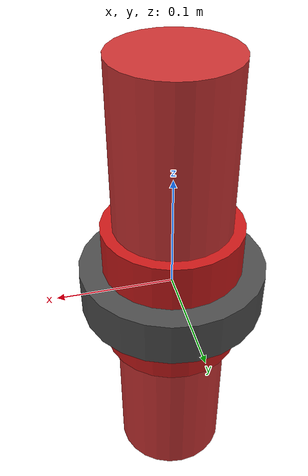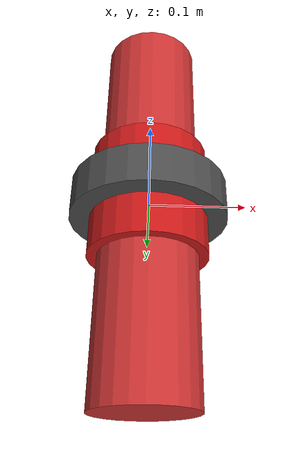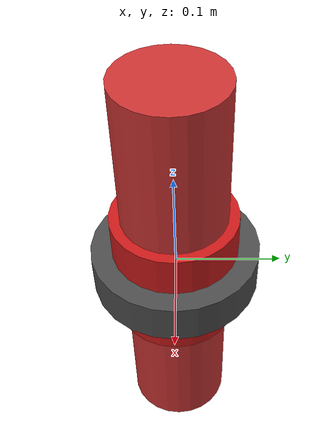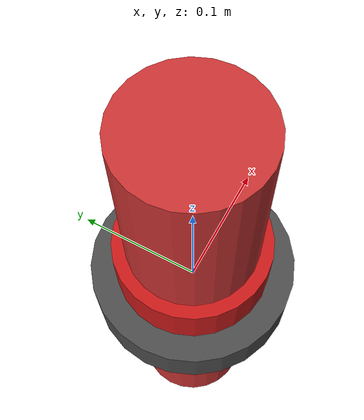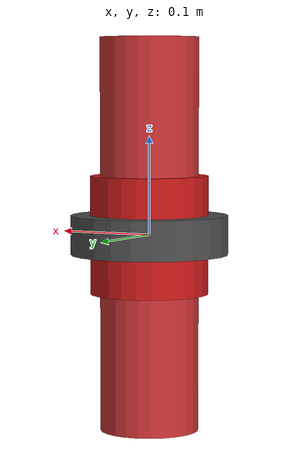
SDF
<?xml version="1.0"?>
<sdf version="1.7">
  <model name="panda">
    <static>false</static>
    <!-- Base Link -->
    <link name="panda_link0">
      <inertial>
        <mass>2.0</mass>
        <inertia>
          <ixx>0.01</ixx><ixy>0</ixy><ixz>0</ixz>
          <iyy>0.01</iyy><iyz>0</iyz>
          <izz>0.02</izz>
        </inertia>
      </inertial>
      <collision name="link0_collision">
        <geometry><cylinder><radius>0.08</radius><length>0.04</length></cylinder></geometry>
      </collision>
      <visual name="link0_visual">
        <geometry><cylinder><radius>0.08</radius><length>0.04</length></cylinder></geometry>
        <material><ambient>0.3 0.3 0.3 1</ambient></material>
      </visual>
    </link>
    <!-- Joint 1-7 Links (Panda has 7 joints) -->
    <link name="panda_link1">
      <inertial>
        <mass>2.0</mass>
        <inertia><ixx>0.01</ixx><ixy>0</ixy><ixz>0</ixz><iyy>0.01</iyy><iyz>0</iyz><izz>0.005</izz></inertia>
      </inertial>
      <collision name="link1_collision">
        <geometry><cylinder><radius>0.06</radius><length>0.12</length></cylinder></geometry>
      </collision>
      <visual name="link1_visual">
        <geometry><cylinder><radius>0.06</radius><length>0.12</length></cylinder></geometry>
        <material><ambient>0.8 0.1 0.1 1</ambient></material>
      </visual>
    </link>
    <link name="panda_link2">
      <inertial>
        <mass>2.5</mass>
        <inertia><ixx>0.015</ixx><ixy>0</ixy><ixz>0</ixz><iyy>0.015</iyy><iyz>0</iyz><izz>0.005</izz></inertia>
      </inertial>
      <collision name="link2_collision">
        <geometry><cylinder><radius>0.05</radius><length>0.40</length></cylinder></geometry>
      </collision>
      <visual name="link2_visual">
        <geometry><cylinder><radius>0.05</radius><length>0.40</length></cylinder></geometry>
        <material><ambient>0.8 0.2 0.2 1</ambient></material>
      </visual>
    </link>
    <link name="panda_link3">
      <inertial>
        <mass>2.0</mass>
        <inertia><ixx>0.01</ixx><ixy>0</ixy><ixz>0</ixz><iyy>0.01</iyy><iyz>0</iyz><izz>0.004</izz></inertia>
      </inertial>
      <collision name="link3_collision">
        <geometry><cylinder><radius>0.05</radius><length>0.40</length></cylinder></geometry>
      </collision>
      <visual name="link3_visual">
        <geometry><cylinder><radius>0.05</radius><length>0.40</length></cylinder></geometry>
        <material><ambient>0.8 0.3 0.3 1</ambient></material>
      </visual>
    </link>
    <link name="panda_link4">
      <inertial>
        <mass>1.5</mass>
        <inertia><ixx>0.008</ixx><ixy>0</ixy><ixz>0</ixz><iyy>0.008</iyy><iyz>0</iyz><izz>0.003</izz></inertia>
      </inertial>
      <collision name="link4_collision">
        <geometry><cylinder><radius>0.04</radius><length>0.30</length></cylinder></geometry>
      </collision>
      <visual name="link4_visual">
        <geometry><cylinder><radius>0.04</radius><length>0.30</length></cylinder></geometry>
        <material><ambient>0.8 0.4 0.4 1</ambient></material>
      </visual>
    </link>
    <link name="panda_link5">
      <inertial>
        <mass>1.0</mass>
        <inertia><ixx>0.005</ixx><ixy>0</ixy><ixz>0</ixz><iyy>0.005</iyy><iyz>0</iyz><izz>0.002</izz></inertia>
      </inertial>
      <collision name="link5_collision">
        <geometry><cylinder><radius>0.04</radius><length>0.25</length></cylinder></geometry>
      </collision>
      <visual name="link5_visual">
        <geometry><cylinder><radius>0.04</radius><length>0.25</length></cylinder></geometry>
        <material><ambient>0.8 0.5 0.5 1</ambient></material>
      </visual>
    </link>
    <link name="panda_link6">
      <inertial>
        <mass>0.8</mass>
        <inertia><ixx>0.003</ixx><ixy>0</ixy><ixz>0</ixz><iyy>0.003</iyy><iyz>0</iyz><izz>0.001</izz></inertia>
      </inertial>
      <collision name="link6_collision">
        <geometry><cylinder><radius>0.035</radius><length>0.15</length></cylinder></geometry>
      </collision>
      <visual name="link6_visual">
        <geometry><cylinder><radius>0.035</radius><length>0.15</length></cylinder></geometry>
        <material><ambient>0.8 0.6 0.6 1</ambient></material>
      </visual>
    </link>
    <link name="panda_link7">
      <inertial>
        <mass>0.5</mass>
        <inertia><ixx>0.002</ixx><ixy>0</ixy><ixz>0</ixz><iyy>0.002</iyy><iyz>0</iyz><izz>0.001</izz></inertia>
      </inertial>
      <collision name="link7_collision">
        <geometry><cylinder><radius>0.03</radius><length>0.10</length></cylinder></geometry>
      </collision>
      <visual name="link7_visual">
        <geometry><cylinder><radius>0.03</radius><length>0.10</length></cylinder></geometry>
        <material><ambient>0.8 0.7 0.7 1</ambient></material>
      </visual>
    </link>
    <!-- End Effector (gripper base) -->
    <link name="panda_link8">
      <inertial>
        <mass>0.3</mass>
        <inertia><ixx>0.001</ixx><ixy>0</ixy><ixz>0</ixz><iyy>0.001</iyy><iyz>0</iyz><izz>0.001</izz></inertia>
      </inertial>
      <collision name="link8_collision">
        <geometry><box><size>0.06 0.06 0.04</size></box></geometry>
      </collision>
      <visual name="link8_visual">
        <geometry><box><size>0.06 0.06 0.04</size></box></geometry>
        <material><ambient>0.1 0.8 0.1 1</ambient></material>
      </visual>
    </link>
    <!-- Joints -->
    <joint name="panda_joint1" type="revolute">
      <parent>panda_link0</parent>
      <child>panda_link1</child>
      <axis>0 0 1</axis>
      <pose>0 0 0.02 0 0 0</pose>
    </joint>
    <joint name="panda_joint2" type="revolute">
      <parent>panda_link1</parent>
      <child>panda_link2</child>
      <axis>0 1 0</axis>
      <pose>0 0 0.06 0 0 0</pose>
    </joint>
    <joint name="panda_joint3" type="revolute">
      <parent>panda_link2</parent>
      <child>panda_link3</child>
      <axis>0 1 0</axis>
      <pose>0 0 0.20 0 0 0</pose>
    </joint>
    <joint name="panda_joint4" type="revolute">
      <parent>panda_link3</parent>
      <child>panda_link4</child>
      <axis>0 0 1</axis>
      <pose>0 0 0.20 0 0 0</pose>
    </joint>
    <joint name="panda_joint5" type="revolute">
      <parent>panda_link4</parent>
      <child>panda_link5</child>
      <axis>0 1 0</axis>
      <pose>0 0 0.15 0 0 0</pose>
    </joint>
    <joint name="panda_joint6" type="revolute">
      <parent>panda_link5</parent>
      <child>panda_link6</child>
      <axis>0 0 1</axis>
      <pose>0 0 0.12 0 0 0</pose>
    </joint>
    <joint name="panda_joint7" type="revolute">
      <parent>panda_link6</parent>
      <child>panda_link7</child>
      <axis>0 1 0</axis>
      <pose>0 0 0.075 0 0 0</pose>
    </joint>
    <joint name="panda_joint8" type="fixed">
      <parent>panda_link7</parent>
      <child>panda_link8</child>
      <pose>0 0 0.05 0 0 0</pose>
    </joint>
  </model>
</sdf>
